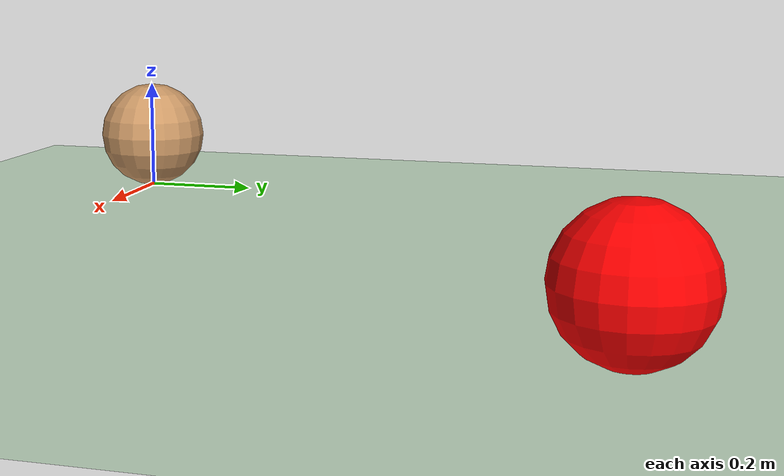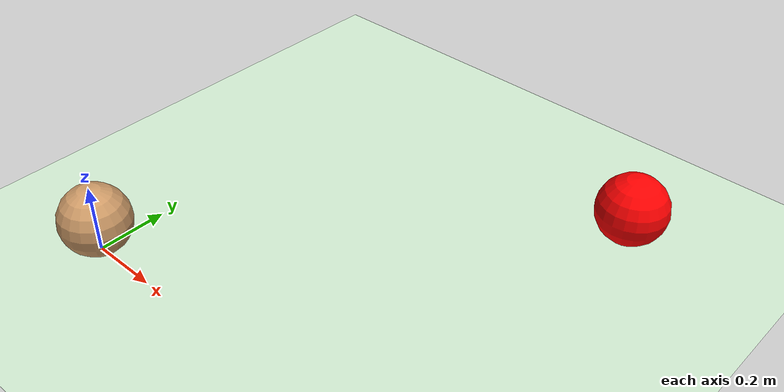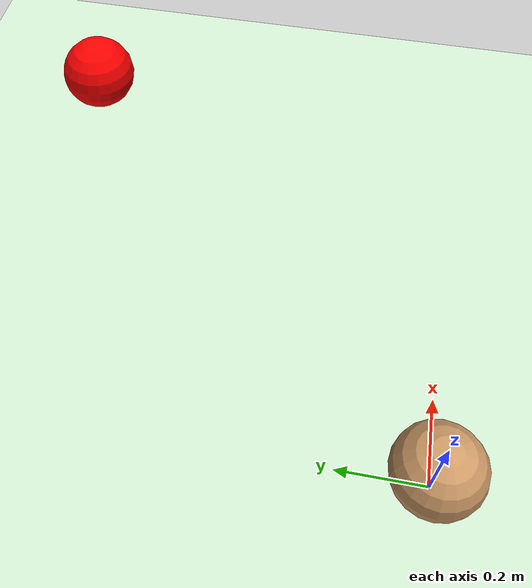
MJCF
<mujoco model="point_mass">

  <compiler angle="radian" coordinate="local" inertiafromgeom="true"/>

  <option timestep="0.01" gravity="0 0 -9.81" density="1.2" viscosity="0.00002" integrator="RK4"/>

  <!-- Default settings for all classes of elements -->
  <default>
    <joint armature="1" damping="1" limited="true"/>

    <geom conaffinity="1" condim="3" density="5.0" friction="1 0.5 0.5" margin="0.01" rgba="0.8 0.6 0.4 1"/>
  </default>

  <!-- Assets: Textures and materials used for rendering -->
  <asset>
    <texture builtin="gradient" height="100" rgb1="1 1 1" rgb2="0 0 0" type="skybox" width="100"/>
    <texture builtin="flat" height="1278" mark="cross" markrgb="1 1 1" name="texgeom" random="0.01" rgb1="0.8 0.6 0.4" rgb2="0.8 0.6 0.4" type="cube" width="127"/>
    <texture builtin="checker" height="100" name="texplane" rgb1="0 0 0" rgb2="0.8 0.8 0.8" type="2d" width="100"/>

    <material name="MatPlane" reflectance="0.5" shininess="1" specular="1" texrepeat="60 60" texture="texplane"/>
    <material name="geom" texture="texgeom" texuniform="true"/>
  </asset>

  <!-- Worldbody: The physical simulation space -->
  <worldbody>
    <light cutoff="100" diffuse="1 1 1" dir="-0 0 -1.3" directional="true" exponent="1" pos="0 0 1.3" specular=".1 .1 .1"/>

    <!-- Floor: A large plane -->
    <geom conaffinity="1" condim="3" material="MatPlane" name="floor" pos="0 0 0" rgba="0.8 0.9 0.8 1" size="40 40 40" type="plane"/>

    <!-- THE AGENT -->
    <body name="torso" pos="0 0 0.1">
      <!--
        Camera:
        - mode="trackcom": Automatically track the Center of Mass of this body.
        - xyaxes: Manually defines the camera's X and Y orientation axes.
      -->
      <camera name="track" mode="trackcom" pos="0 -3 3" xyaxes="1 0 0 0 1 1"/>

      <joint name="root_x" type="slide" pos="0 0 0" axis="1 0 0" range="-10 10"/>
      <joint name="root_y" type="slide" pos="0 0 0" axis="0 1 0" range="-10 10"/>

      <geom name="torso_geom" pos="0 0 0" size="0.1" type="sphere"/>
    </body>

    <!-- THE TARGET -->
    <body name="target" pos="1 1 0.1">
      <geom name="target_geom" pos="0 0 0" size="0.1" type="sphere" rgba="1 0 0 1" conaffinity="0" contype="0"/>
    </body>
  </worldbody>

  <!-- Actuators: Controls -->
  <actuator>
    <motor ctrllimited="true" ctrlrange="-1 1" gear="1" joint="root_x"/>
    <motor ctrllimited="true" ctrlrange="-1 1" gear="1" joint="root_y"/>
  </actuator>
</mujoco>
